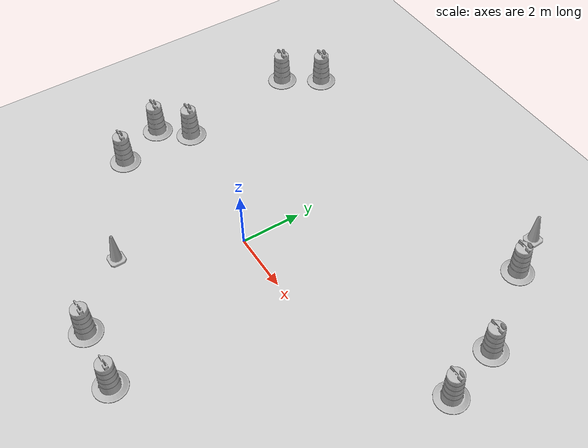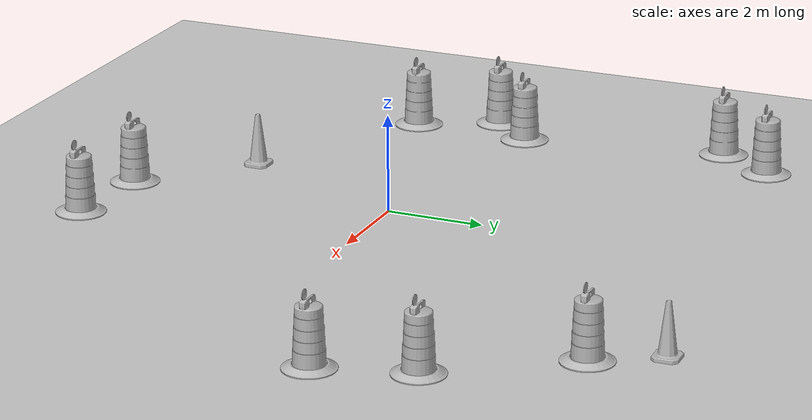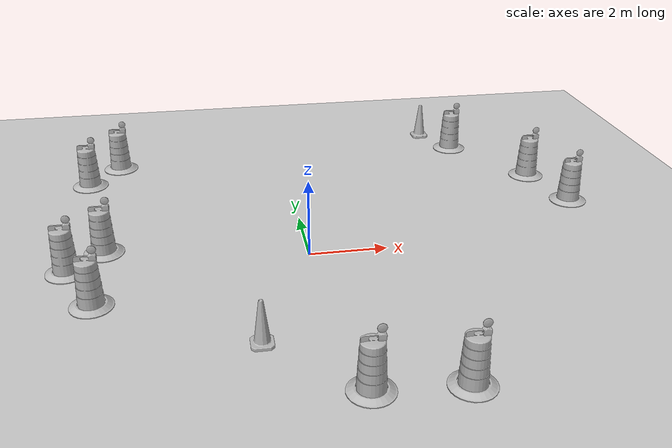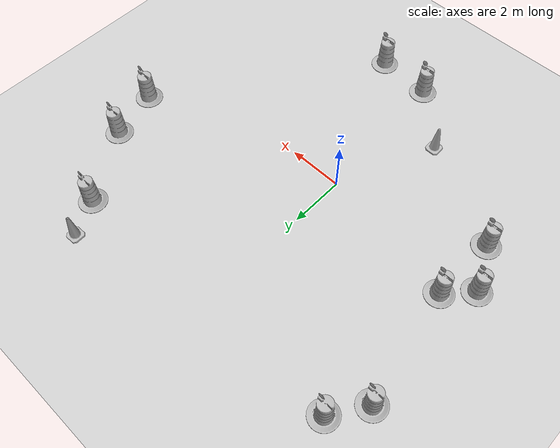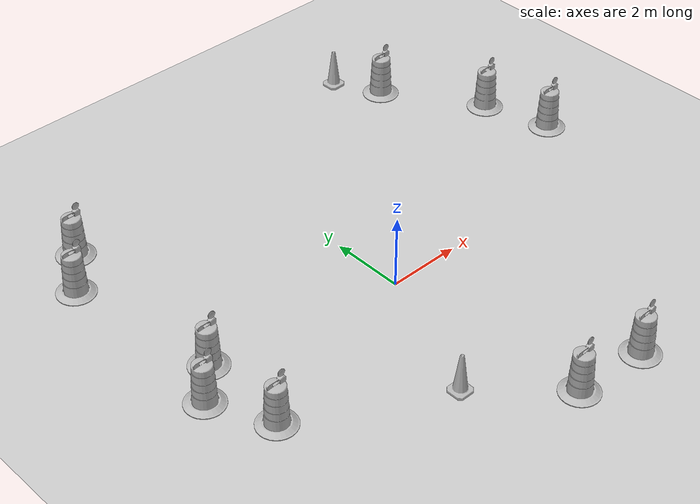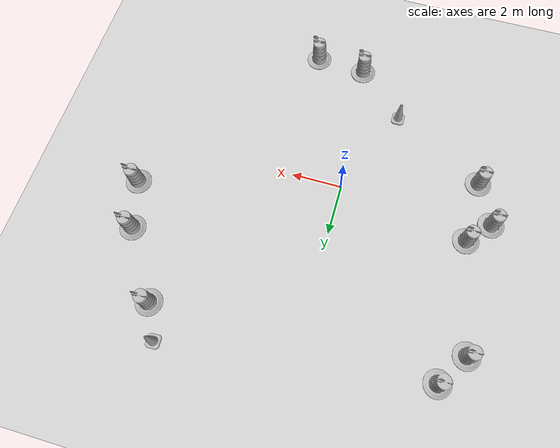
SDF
<sdf version="1.7">
 <world name="default">
  <light name="sun" type="directional">
   <pose>0 0 10 0 -0 0</pose>
   <diffuse>0.8 0.8 0.8 1</diffuse>
   <specular>0.2 0.2 0.2 1</specular>
   <attenuation>
    <range>1000</range>
    <constant>0.9</constant>
    <linear>0.01</linear>
    <quadratic>0.001</quadratic>
   </attenuation>
   <direction>-0.5 0.1 -0.9</direction>
   <spot><inner_angle>0</inner_angle><outer_angle>0</outer_angle><falloff>0</falloff></spot>
  </light>
  <model name="ground_plane">
   <static>1</static>
   <link name="link">
    <collision name="collision">
     <geometry><plane><normal>0 0 1</normal><size>100 100</size></plane></geometry>
     <surface>
      <contact><collide_bitmask>65535</collide_bitmask></contact>
      <friction><ode><mu>100</mu><mu2>50</mu2></ode></friction>
     </surface>
    </collision>
    <visual name="visual">
     <cast_shadows>0</cast_shadows>
     <geometry><plane><normal>0 0 1</normal><size>100 100</size></plane></geometry>
     <material>
      <script><uri>file://media/materials/scripts/gazebo.material</uri><name>Gazebo/Grey</name></script>
     </material>
    </visual>
   </link>
  </model>
  <gravity>0 0 -9.8</gravity>
  <magnetic_field>6e-06 2.3e-05 -4.2e-05</magnetic_field>
  <atmosphere type="adiabatic"/>
  <physics type="ode">
   <max_step_size>0.001</max_step_size>
   <real_time_factor>1</real_time_factor>
   <real_time_update_rate>1000</real_time_update_rate>
  </physics>
  <scene><ambient>0.4 0.4 0.4 1</ambient><background>0.7 0.7 0.7 1</background><shadows>1</shadows></scene>
  <audio><device>default</device></audio>
  <spherical_coordinates>
   <surface_model>EARTH_WGS84</surface_model>
   <latitude_deg>0</latitude_deg>
   <longitude_deg>0</longitude_deg>
   <elevation>0</elevation>
   <heading_deg>0</heading_deg>
  </spherical_coordinates>
  <model name="Construction Barrel">
   <link name="link">
    <inertial>
     <pose>0 0 0.4 0 -0 0</pose>
     <mass>500</mass>
     <inertia><ixx>51.2096</ixx><iyy>51.2096</iyy><izz>25</izz><ixy>0</ixy><ixz>0</ixz><iyz>0</iyz></inertia>
    </inertial>
    <collision name="collision">
     <geometry><mesh><uri>model://construction_barrel/meshes/construction_barrel.dae</uri></mesh></geometry>
    </collision>
    <visual name="visual">
     <geometry><mesh><uri>model://construction_barrel/meshes/construction_barrel.dae</uri></mesh></geometry>
    </visual>
   </link>
   <pose>-5.01712 6.23052 1e-06 3e-06 2e-06 -2.1e-05</pose>
  </model>
  <model name="Construction Barrel_0">
   <link name="link">
    <inertial>
     <pose>0 0 0.4 0 -0 0</pose>
     <mass>500</mass>
     <inertia><ixx>51.2096</ixx><iyy>51.2096</iyy><izz>25</izz><ixy>0</ixy><ixz>0</ixz><iyz>0</iyz></inertia>
    </inertial>
    <collision name="collision">
     <geometry><mesh><uri>model://construction_barrel/meshes/construction_barrel.dae</uri></mesh></geometry>
    </collision>
    <visual name="visual">
     <geometry><mesh><uri>model://construction_barrel/meshes/construction_barrel.dae</uri></mesh></geometry>
    </visual>
   </link>
   <pose>-5.82923 5.05476 1e-06 3e-06 2e-06 -2e-05</pose>
  </model>
  <model name="Construction Barrel_1">
   <link name="link">
    <inertial>
     <pose>0 0 0.4 0 -0 0</pose>
     <mass>500</mass>
     <inertia><ixx>51.2096</ixx><iyy>51.2096</iyy><izz>25</izz><ixy>0</ixy><ixz>0</ixz><iyz>0</iyz></inertia>
    </inertial>
    <collision name="collision">
     <geometry><mesh><uri>model://construction_barrel/meshes/construction_barrel.dae</uri></mesh></geometry>
    </collision>
    <visual name="visual">
     <geometry><mesh><uri>model://construction_barrel/meshes/construction_barrel.dae</uri></mesh></geometry>
    </visual>
   </link>
   <pose>-5.09717 0.891912 -0 0 0 -1.8e-05</pose>
  </model>
  <model name="Construction Barrel_2">
   <link name="link">
    <inertial>
     <pose>0 0 0.4 0 -0 0</pose>
     <mass>500</mass>
     <inertia><ixx>51.2096</ixx><iyy>51.2096</iyy><izz>25</izz><ixy>0</ixy><ixz>0</ixz><iyz>0</iyz></inertia>
    </inertial>
    <collision name="collision">
     <geometry><mesh><uri>model://construction_barrel/meshes/construction_barrel.dae</uri></mesh></geometry>
    </collision>
    <visual name="visual">
     <geometry><mesh><uri>model://construction_barrel/meshes/construction_barrel.dae</uri></mesh></geometry>
    </visual>
   </link>
   <pose>-5.9195 0.015464 -2e-06 8e-06 -4e-06 -1.7e-05</pose>
  </model>
  <model name="Construction Barrel_3">
   <link name="link">
    <inertial>
     <pose>0 0 0.4 0 -0 0</pose>
     <mass>500</mass>
     <inertia><ixx>51.2096</ixx><iyy>51.2096</iyy><izz>25</izz><ixy>0</ixy><ixz>0</ixz><iyz>0</iyz></inertia>
    </inertial>
    <collision name="collision">
     <geometry><mesh><uri>model://construction_barrel/meshes/construction_barrel.dae</uri></mesh></geometry>
    </collision>
    <visual name="visual">
     <geometry><mesh><uri>model://construction_barrel/meshes/construction_barrel.dae</uri></mesh></geometry>
    </visual>
   </link>
   <pose>-5.17553 -1.56245 -1e-06 3e-06 7e-06 -1.5e-05</pose>
  </model>
  <model name="Construction Barrel_4">
   <link name="link">
    <inertial>
     <pose>0 0 0.4 0 -0 0</pose>
     <mass>500</mass>
     <inertia><ixx>51.2096</ixx><iyy>51.2096</iyy><izz>25</izz><ixy>0</ixy><ixz>0</ixz><iyz>0</iyz></inertia>
    </inertial>
    <collision name="collision">
     <geometry><mesh><uri>model://construction_barrel/meshes/construction_barrel.dae</uri></mesh></geometry>
    </collision>
    <visual name="visual">
     <geometry><mesh><uri>model://construction_barrel/meshes/construction_barrel.dae</uri></mesh></geometry>
    </visual>
   </link>
   <pose>0.423254 -5.43933 0 0 0 -1.5e-05</pose>
  </model>
  <model name="Construction Cone">
   <link name="link">
    <collision name="collision">
     <geometry>
      <mesh><scale>10 10 10</scale><uri>model://construction_cone/meshes/construction_cone.dae</uri></mesh>
     </geometry>
    </collision>
    <visual name="visual">
     <geometry>
      <mesh><scale>10 10 10</scale><uri>model://construction_cone/meshes/construction_cone.dae</uri></mesh>
     </geometry>
    </visual>
    <inertial>
     <inertia><ixx>1</ixx><ixy>0</ixy><ixz>0</ixz><iyy>1</iyy><iyz>0</iyz><izz>1</izz></inertia>
     <mass>1</mass>
    </inertial>
   </link>
   <pose>-1.50874 -3.5932 -0 0 -1e-06 0</pose>
  </model>
  <model name="Construction Barrel_5">
   <link name="link">
    <inertial>
     <pose>0 0 0.4 0 -0 0</pose>
     <mass>500</mass>
     <inertia><ixx>51.2096</ixx><iyy>51.2096</iyy><izz>25</izz><ixy>0</ixy><ixz>0</ixz><iyz>0</iyz></inertia>
    </inertial>
    <collision name="collision">
     <geometry><mesh><uri>model://construction_barrel/meshes/construction_barrel.dae</uri></mesh></geometry>
    </collision>
    <visual name="visual">
     <geometry><mesh><uri>model://construction_barrel/meshes/construction_barrel.dae</uri></mesh></geometry>
    </visual>
   </link>
   <pose>2.40435 -5.59161 -1e-06 0 5e-06 -1e-05</pose>
  </model>
  <model name="Construction Barrel_6">
   <link name="link">
    <inertial>
     <pose>0 0 0.4 0 -0 0</pose>
     <mass>500</mass>
     <inertia><ixx>51.2096</ixx><iyy>51.2096</iyy><izz>25</izz><ixy>0</ixy><ixz>0</ixz><iyz>0</iyz></inertia>
    </inertial>
    <collision name="collision">
     <geometry><mesh><uri>model://construction_barrel/meshes/construction_barrel.dae</uri></mesh></geometry>
    </collision>
    <visual name="visual">
     <geometry><mesh><uri>model://construction_barrel/meshes/construction_barrel.dae</uri></mesh></geometry>
    </visual>
   </link>
   <pose>7.23623 3.76502 -2e-06 -0 7e-06 -8e-06</pose>
  </model>
  <model name="Construction Barrel_7">
   <link name="link">
    <inertial>
     <pose>0 0 0.4 0 -0 0</pose>
     <mass>500</mass>
     <inertia><ixx>51.2096</ixx><iyy>51.2096</iyy><izz>25</izz><ixy>0</ixy><ixz>0</ixz><iyz>0</iyz></inertia>
    </inertial>
    <collision name="collision">
     <geometry><mesh><uri>model://construction_barrel/meshes/construction_barrel.dae</uri></mesh></geometry>
    </collision>
    <visual name="visual">
     <geometry><mesh><uri>model://construction_barrel/meshes/construction_barrel.dae</uri></mesh></geometry>
    </visual>
   </link>
   <pose>5.56707 6.26715 -1e-06 2e-06 -1e-06 0.000288</pose>
  </model>
  <model name="Construction Barrel_8">
   <link name="link">
    <inertial>
     <pose>0 0 0.4 0 -0 0</pose>
     <mass>500</mass>
     <inertia><ixx>51.2096</ixx><iyy>51.2096</iyy><izz>25</izz><ixy>0</ixy><ixz>0</ixz><iyz>0</iyz></inertia>
    </inertial>
    <collision name="collision">
     <geometry><mesh><uri>model://construction_barrel/meshes/construction_barrel.dae</uri></mesh></geometry>
    </collision>
    <visual name="visual">
     <geometry><mesh><uri>model://construction_barrel/meshes/construction_barrel.dae</uri></mesh></geometry>
    </visual>
   </link>
   <pose>7.75549 1.9117 1e-06 2e-06 3e-06 -6e-06</pose>
  </model>
  <model name="Construction Cone_0">
   <link name="link">
    <collision name="collision">
     <geometry>
      <mesh><scale>10 10 10</scale><uri>model://construction_cone/meshes/construction_cone.dae</uri></mesh>
     </geometry>
    </collision>
    <visual name="visual">
     <geometry>
      <mesh><scale>10 10 10</scale><uri>model://construction_cone/meshes/construction_cone.dae</uri></mesh>
     </geometry>
    </visual>
    <inertial>
     <inertia><ixx>1</ixx><ixy>0</ixy><ixz>0</ixz><iyy>1</iyy><iyz>0</iyz><izz>1</izz></inertia>
     <mass>1</mass>
    </inertial>
   </link>
   <pose>4.88904 7.51028 -0 0 -0 0.035194</pose>
  </model>
 </world>
</sdf>
